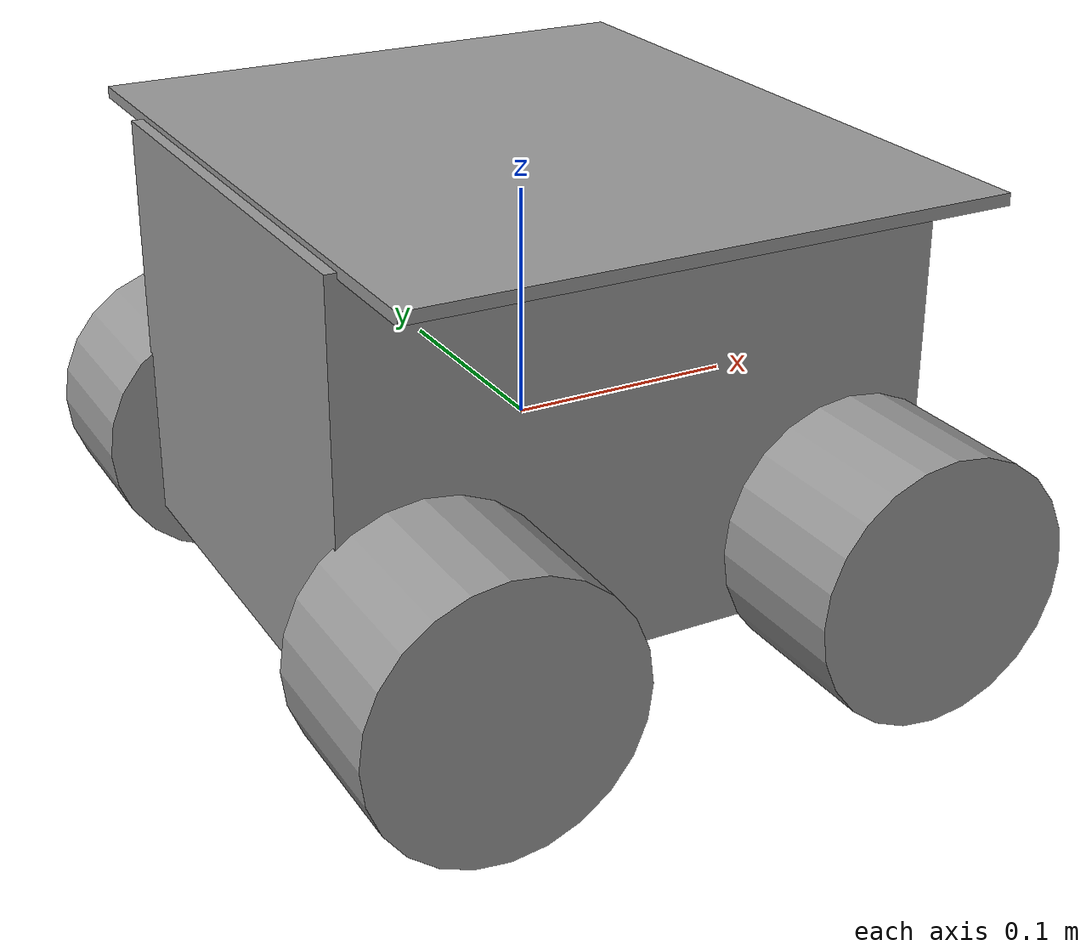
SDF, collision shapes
<?xml version="1.0"?>
<sdf version="1.4">
  <model>
    <static>false</static>

    <link name="base_link">

      <inertial>
        <mass>3</mass>
        <inertia>
          <ixx>0.006</ixx>
          <ixy>0.0</ixy>
          <ixz>0.0</ixz>
          <iyy>0.006</iyy>
          <iyz>0.0</iyz>
          <izz>0.006</izz>
        </inertia>
      </inertial>

      <collision name="base_link_collision">
        <pose>0 0 0.03 0 0 0</pose>
        <geometry>
          <box>
            <size>0.26 0.205 0.18</size>
          </box>
        </geometry>
      </collision>

      <visual name="base_link_visual">
        <pose>0 0 -0.06 0 0 0</pose>
        <geometry>
          <mesh>
            <uri>model://swarmie_description/meshes/Body.stl</uri>
          </mesh>
        </geometry>
        <material>
          <script>
            <name>Gazebo/Grey</name>
          </script>
        </material>
      </visual>

      <sensor type="ray" name="us_left_sensor">
        <pose>0.15 0.07 0.053 0 0 0.43633</pose>
        <visualize>false</visualize>
        <update_rate>5</update_rate>
        <ray>
          <scan>
            <horizontal>
              <samples>3</samples>
              <resolution>1.0</resolution>
              <min_angle>-.478</min_angle>
              <max_angle>0.478</max_angle>
            </horizontal>
          </scan>
          <range>
            <min>0.010</min>
            <max>3</max>
            <resolution>0.01</resolution>
          </range>
        </ray>
        <plugin name="us" filename="libhector_gazebo_ros_sonar.so">
          <gaussianNoise>0.005</gaussianNoise>
          <topicName>sonarLeft</topicName>
          <frameId>us_left_link</frameId>
        </plugin>
      </sensor>
      <sensor type="ray" name="us_right_sensor">
        <pose>0.15 -0.07 0.053 0 0 -0.43633</pose>
        <visualize>false</visualize>
        <update_rate>5</update_rate>
        <ray>
          <scan>
            <horizontal>
              <samples>3</samples>
              <resolution>1.0</resolution>
              <min_angle>-.478</min_angle>
              <max_angle>0.478</max_angle>
            </horizontal>
          </scan>
          <range>
            <min>0.010</min>
            <max>3</max>
            <resolution>0.01</resolution>
          </range>
        </ray>
        <plugin name="us" filename="libhector_gazebo_ros_sonar.so">
          <gaussianNoise>0.005</gaussianNoise>
          <topicName>sonarRight</topicName>
          <frameId>us_right_link</frameId>
        </plugin>
      </sensor>
      <sensor type="ray" name="us_center_sensor">
        <pose>0.15 0 0.053 0 0 0</pose>
        <visualize>false</visualize>
        <update_rate>5</update_rate>
        <ray>
          <scan>
            <horizontal>
              <samples>3</samples>
              <resolution>1.0</resolution>
              <min_angle>-.478</min_angle>
              <max_angle>0.478</max_angle>
            </horizontal>
          </scan>
          <range>
            <min>0.010</min>
            <max>3</max>
            <resolution>0.01</resolution>
          </range>
        </ray>
        <plugin name="us" filename="libhector_gazebo_ros_sonar.so">
          <gaussianNoise>0.005</gaussianNoise>
          <topicName>sonarCenter</topicName>
          <frameId>us_center_link</frameId>
        </plugin>
      </sensor>

      <!-- camera specification -->
      <sensor type="camera" name="camera">
        <pose>0.145 -0.0162 0.088 0.0 0.628 0.0</pose>
        <visualize>false</visualize>
        <update_rate>6.0</update_rate>
        <camera name="head">
          <horizontal_fov>1.0123</horizontal_fov>
          <image>
            <width>320</width>
            <height>240</height>
            <format>B8G8R8</format>
          </image>
          <clip>
            <near>0.02</near>
            <far>300</far>
          </clip>
          <noise>
            <type>gaussian</type>
            <mean>0.0</mean>
            <stddev>0.007</stddev>
          </noise>
        </camera>
        <plugin name="camera_controller" filename="libgazebo_ros_camera.so">
          <alwaysOn>true</alwaysOn>
          <updateRate>0.0</updateRate>
          <cameraName>camera</cameraName>
          <imageTopicName>camera/image</imageTopicName>
          <cameraInfoTopicName>camera/info</cameraInfoTopicName>
          <frameName>camera_link</frameName>
          <hackBaseline>0.1</hackBaseline>
          <distortionK1>0.0</distortionK1>
          <distortionK2>0.0</distortionK2>
          <distortionK3>0.0</distortionK3>
          <distortionT1>0.0</distortionT1>
          <distortionT2>0.0</distortionT2>
          <CxPrime>0.0</CxPrime>
          <Cx>0.0</Cx>
          <Cy>0.0</Cy>
          <focalLength>0.0</focalLength>
        </plugin>
      </sensor>

      <collision name="top_plate_colision">
        <pose>0 0 0.12 0 0 0</pose>
        <geometry>
          <box>
            <size>0.25 0.3 0.005</size>
          </box>
        </geometry>
      </collision>
      <visual name="top_plate_visual">
        <pose>0.0006 0 0.12 0 0 0</pose>
        <geometry>
          <mesh>
            <uri>model://swarmie_description/meshes/CoverPlate.stl</uri>
          </mesh>
        </geometry>
        <material>
          <script>
            <name>Gazebo/FlatBlack</name>
          </script>
        </material>
      </visual>
    </link> <!-- end body -->

    <link name="left_front_wheel">
      <pose>0.095 0.135 -0.03 0 0 0</pose>
      <inertial>
        <mass>1.0</mass>
        <inertia>
          <ixx>0.000776</ixx>
          <ixy>0.0</ixy>
          <ixz>0.0</ixz>
          <iyy>0.0012</iyy>
          <iyz>0.0</iyz>
          <izz>0.000776</izz>
        </inertia>
      </inertial>
      <collision name="collision">
        <pose>0 0 0 1.5708 0 0</pose>
        <geometry>
          <cylinder>
            <radius>.0575</radius>
            <length>.07</length>
          </cylinder>
        </geometry>
        <surface>
          <friction>
            <ode>
              <mu>0.8</mu>
              <mu2>0.7</mu2>
            </ode>
          </friction>
        </surface>
      </collision>
      <visual name="visual">
        <geometry>
          <mesh>
            <uri>model://swarmie_description/meshes/TireWheelLeft.stl</uri>
          </mesh>
        </geometry>
        <material>
          <script>
            <name>Gazebo/Grey</name>
          </script>
        </material>
      </visual>
    </link> <!-- end left_front_wheel -->

    <joint name="left_front" type="revolute">
      <parent>base_link</parent>
      <child>left_front_wheel</child>
      <axis>
        <xyz>0 1 0</xyz>
      </axis>
      <physics>
        <ode>
          <cfm>0.01</cfm>
          <erp>0.8</erp>
        </ode>
      </physics>
    </joint>

    <link name="right_front_wheel">
      <pose>0.095 -0.135 -0.03 0 0 0</pose>
      <inertial>
        <mass>1.0</mass>
        <inertia>
          <ixx>0.000776</ixx>
          <ixy>0.0</ixy>
          <ixz>0.0</ixz>
          <iyy>0.0012</iyy>
          <iyz>0.0</iyz>
          <izz>0.000776</izz>
        </inertia>
      </inertial>
      <collision name="collision">
        <pose>0 0 0 -1.5708 0 0</pose>
        <geometry>
          <cylinder>
            <radius>.0575</radius>
            <length>.07</length>
          </cylinder>
        </geometry>
        <surface>
          <friction>
            <ode>
              <mu>0.8</mu>
              <mu2>0.7</mu2>
            </ode>
          </friction>
        </surface>
      </collision>
      <visual name="visual">
        <geometry>
          <mesh>
            <uri>model://swarmie_description/meshes/TireWheelRight.stl</uri>
          </mesh>
        </geometry>
        <material>
          <script>
            <name>Gazebo/Grey</name>
          </script>
        </material>
      </visual>
    </link> <!-- end right_front_wheel -->

    <joint name="right_front" type="revolute">
      <parent>base_link</parent>
      <child>right_front_wheel</child>
      <axis>
        <xyz>0 1 0</xyz>
      </axis>
      <physics>
        <ode>
          <cfm>0.01</cfm>
          <erp>0.8</erp>
        </ode>
      </physics>
    </joint>

    <link name="left_rear_wheel">
      <pose>-0.095 0.135 -0.03 0 0 0</pose>
      <inertial>
        <mass>1.0</mass>
        <inertia>
          <ixx>0.000776</ixx>
          <ixy>0.0</ixy>
          <ixz>0.0</ixz>
          <iyy>0.0012</iyy>
          <iyz>0.0</iyz>
          <izz>0.000776</izz>
        </inertia>
      </inertial>
      <collision name="collision">
        <pose>0 0 0 1.5708 0 0</pose>
        <geometry>
          <cylinder>
            <radius>.0575</radius>
            <length>.07</length>
          </cylinder>
        </geometry>
        <surface>
          <friction>
            <ode>
              <mu>0.8</mu>
              <mu2>0.7</mu2>
            </ode>
          </friction>
        </surface>
      </collision>
      <visual name="visual">
        <geometry>
          <mesh>
            <uri>model://swarmie_description/meshes/TireWheelLeft.stl</uri>
          </mesh>
        </geometry>
        <material>
          <script>
            <name>Gazebo/Grey</name>
          </script>
        </material>
      </visual>
    </link> <!-- end left_rear_wheel -->

    <joint name="left_rear" type="revolute">
      <parent>base_link</parent>
      <child>left_rear_wheel</child>
      <axis>
        <xyz>0 1 0</xyz>
      </axis>
      <physics>
        <ode>
          <cfm>0.01</cfm>
          <erp>0.8</erp>
        </ode>
      </physics>
    </joint>

    <link name="right_rear_wheel">
      <pose>-0.095 -0.135 -0.03 0 0 0</pose>
      <inertial>
        <mass>1.0</mass>
        <inertia>
          <ixx>0.000776</ixx>
          <ixy>0.0</ixy>
          <ixz>0.0</ixz>
          <iyy>0.0012</iyy>
          <iyz>0.0</iyz>
          <izz>0.000776</izz>
        </inertia>
      </inertial>
      <collision name="collision">
        <pose>0 0 0 -1.5708 0 0</pose>
        <geometry>
          <cylinder>
            <radius>.0575</radius>
            <length>.07</length>
          </cylinder>
        </geometry>
        <surface>
          <friction>
            <ode>
              <mu>0.8</mu>
              <mu2>0.7</mu2>
            </ode>
          </friction>
        </surface>
      </collision>
      <visual name="visual">
        <geometry>
          <mesh>
            <uri>model://swarmie_description/meshes/TireWheelRight.stl</uri>
          </mesh>
        </geometry>
        <material>
          <script>
            <name>Gazebo/Grey</name>
          </script>
        </material>
      </visual>
    </link> <!-- end right_rear_wheel -->

    <joint name="right_rear" type="revolute">
      <parent>base_link</parent>
      <child>right_rear_wheel</child>
      <axis>
        <xyz>0 1 0</xyz>
      </axis>
      <physics>
        <ode>
          <cfm>0.01</cfm>
          <erp>0.8</erp>
        </ode>
      </physics>
    </joint>

    <!-- Skid Steer Drive plugin -->
    <plugin name="skid_steer_drive_controller" filename="libgazebo_ros_skid_steer_drive.so">
      <updateRate>10</updateRate>
      <leftFrontJoint>left_front</leftFrontJoint>
      <rightFrontJoint>right_front</rightFrontJoint>
      <leftRearJoint>left_rear</leftRearJoint>
      <rightRearJoint>right_rear</rightRearJoint>
      <wheelSeparation>0.27</wheelSeparation>
      <wheelDiameter>0.12</wheelDiameter>
      <robotBaseFrame>base_link</robotBaseFrame>
      <torque>2.8</torque>
      <commandTopic>skidsteer</commandTopic>
      <odometryTopic>odom</odometryTopic>
      <odometryFrame>odom</odometryFrame>
      <broadcastTF>0</broadcastTF>
    </plugin>

    <!-- GPS plugin -->
    <plugin name="gps_sim" filename="libhector_gazebo_ros_gps.so">
      <alwaysOn>1</alwaysOn>
      <updateRate>5</updateRate>
      <bodyName>base_link</bodyName>
      <frameId>base_link</frameId>
      <topicName>fix</topicName>
      <referenceLatitude>28.584810</referenceLatitude>
      <referenceLongitude>-80.649650</referenceLongitude>
      <referenceHeading>0.0</referenceHeading>
      <referenceAltitude>10.0</referenceAltitude>
      <offset>0.0 0.0 0.0</offset>
      <drift>0.1 0.1 0</drift>
      <driftFrequency>0.0 0.0 0.0</driftFrequency>
      <gaussianNoise>0.4 0.5 0.0</gaussianNoise>
    </plugin>

    <!-- IMU plugin -->
    <plugin name="imu_sim" filename="libhector_gazebo_ros_imu.so">
      <updateRate>10</updateRate>
      <bodyName>base_link</bodyName>
      <frameId>base_link</frameId>
      <topicName>imu</topicName>
      <xyzOffset>0 0 0</xyzOffset>
      <rpyOffset>0 0 0</rpyOffset>
      <gaussianNoise>0</gaussianNoise>
      <accelDrift>0.5 0.5 0.5</accelDrift>
      <accelGaussianNoise>0.35 0.35 0.3</accelGaussianNoise>
      <rateDrift>0.1 0.1 0.1</rateDrift>
      <rateGaussianNoise>0.05 0.05 0.015</rateGaussianNoise>
      <headingDrift>0.01</headingDrift>
      <headingGaussianNoise>0.01</headingGaussianNoise>
    </plugin>

  </model>
</sdf>
